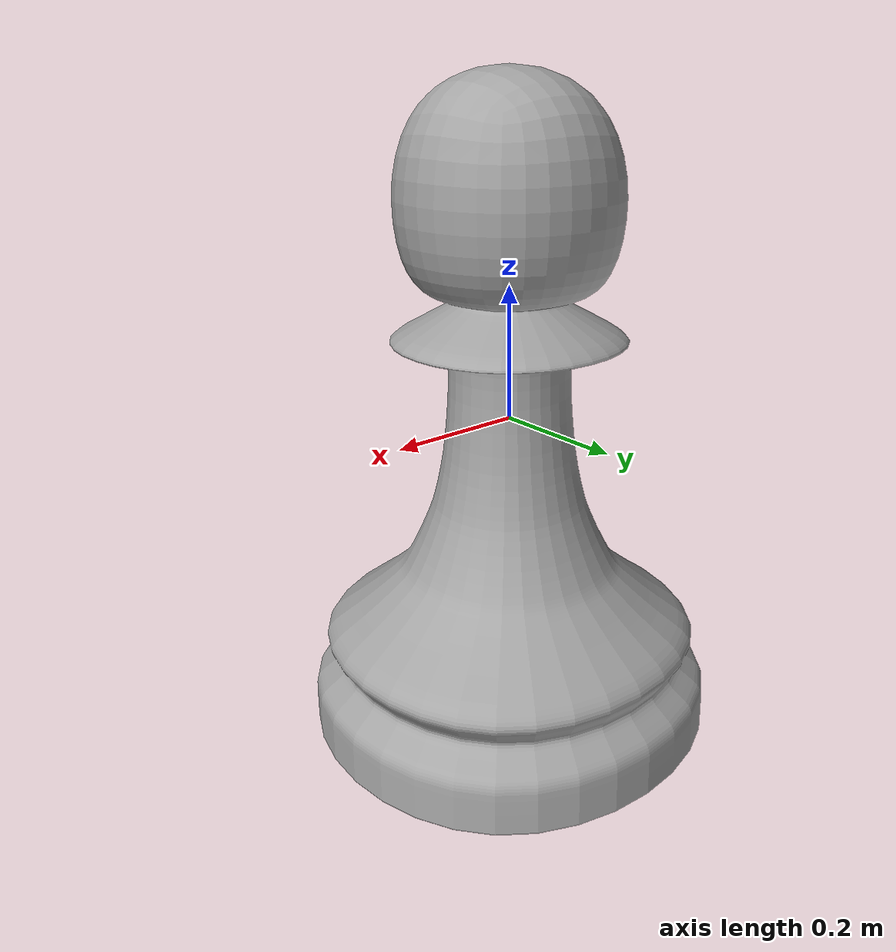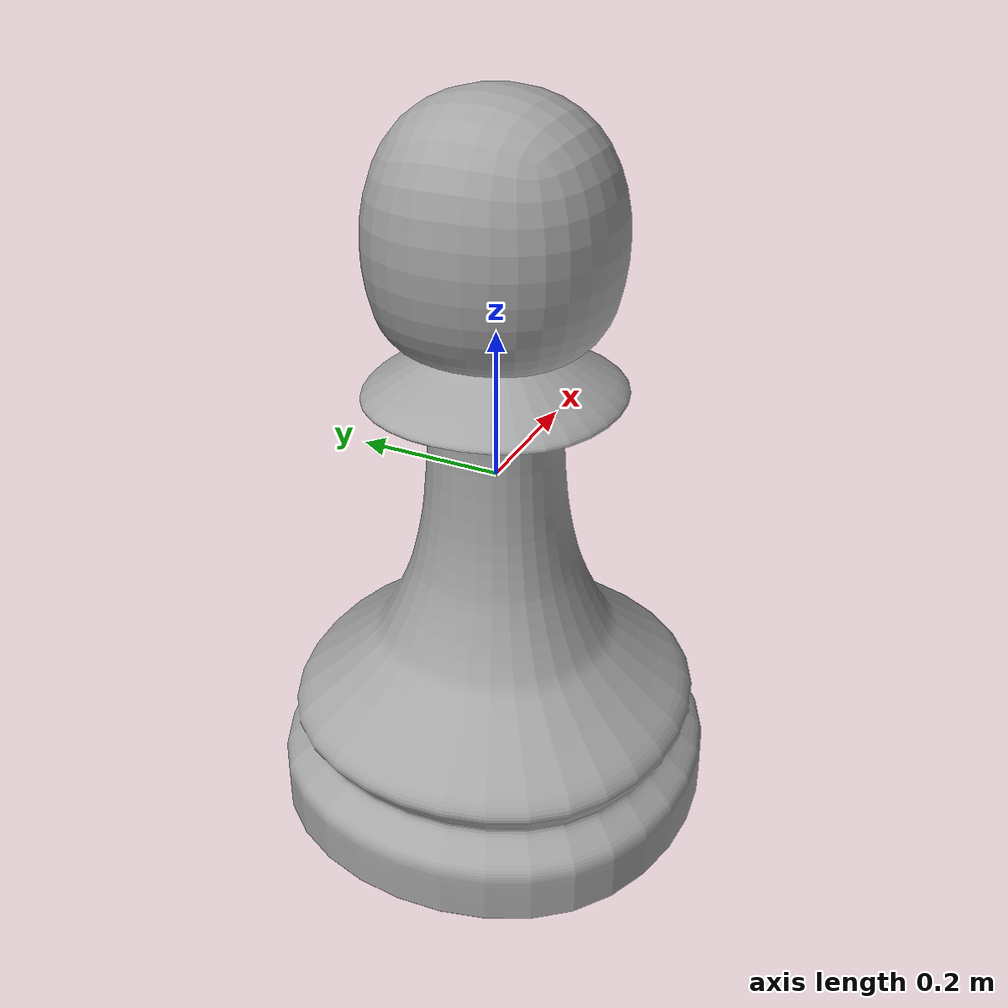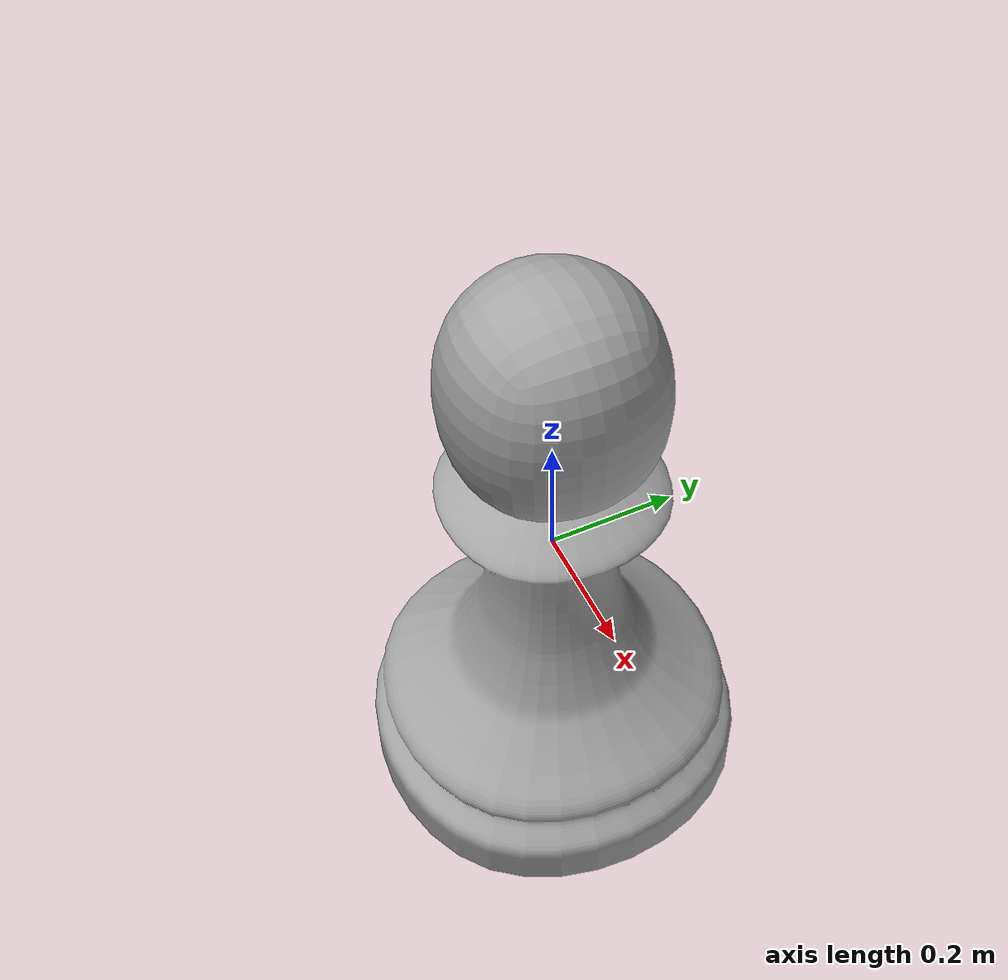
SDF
<?xml version="1.0" ?>
<sdf version="1.5">
  <model name='chess6'>
    <pose>0 0 0 0 0 0</pose>
    <static>1</static>
    <link name='body'>
      <collision name="chess6-coll">
        <pose>0 0 -0.5 0 0 0</pose>
        <geometry>
          <mesh>
            <uri>model://chess6/meshes/chess6.dae</uri>
          </mesh>
        </geometry>
      </collision>
      <visual name='chess6'>
        <cast_shadows>1</cast_shadows>
        <pose>0 0 -0.5 0 0 0</pose>
        <geometry>
          <mesh>
            <uri>model://chess6/meshes/chess6.dae</uri>
          </mesh>
        </geometry>
      </visual>
      <velocity_decay>
        <linear>0</linear>
        <angular>0</angular>
      </velocity_decay>
      <self_collide>0</self_collide>
      <kinematic>0</kinematic>
      <gravity>1</gravity>
    </link>
  </model>

</sdf>
